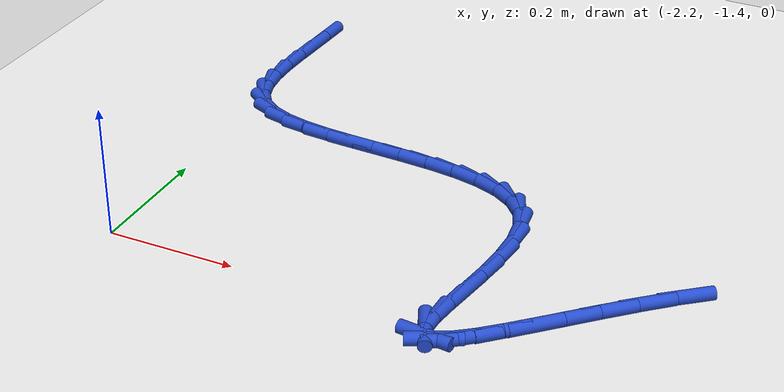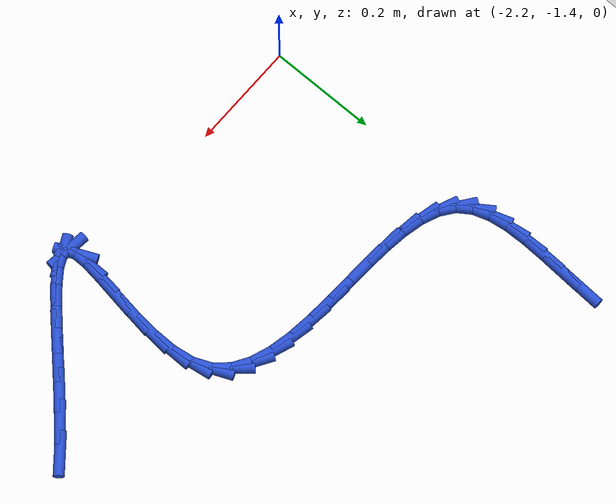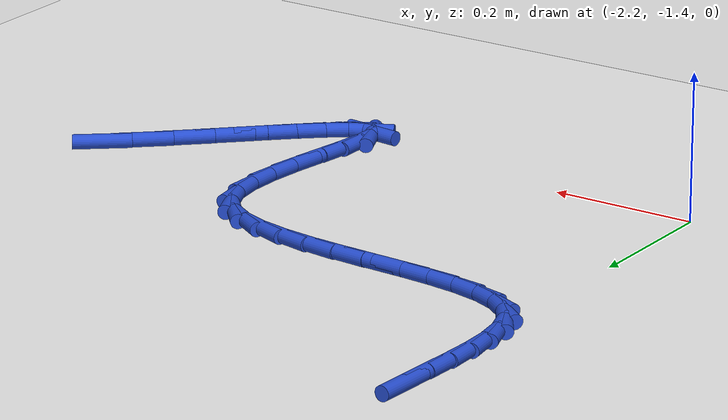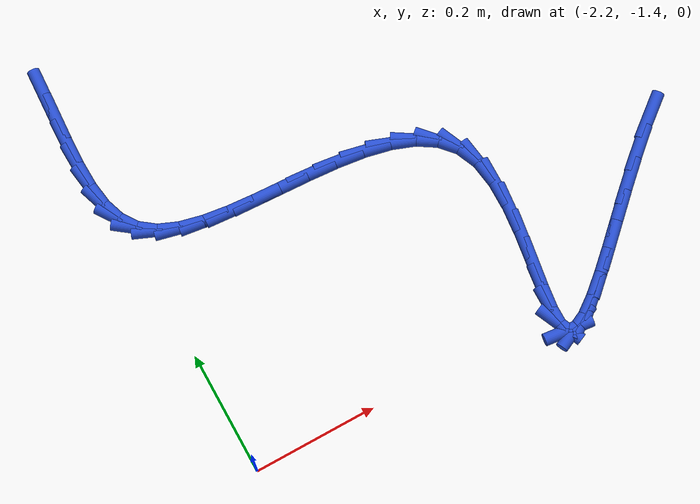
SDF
<sdf version="1.6">
 <world name="default">
  <model name="ground_plane">
   <static>1</static>
   <link name="link">
    <collision name="collision">
     <geometry><plane><normal>0 0 1</normal><size>100 100</size></plane></geometry>
     <surface><friction><ode><mu>100</mu><mu2>50</mu2></ode></friction></surface>
    </collision>
    <visual name="visual">
     <cast_shadows>0</cast_shadows>
     <geometry><plane><normal>0 0 1</normal><size>100 100</size></plane></geometry>
     <material>
      <script><uri>file://media/materials/scripts/gazebo.material</uri><name>Gazebo/WhiteGlow</name></script>
     </material>
    </visual>
   </link>
  </model>
  <model name="line">
   <link name="link_132">
    <pose>-2.212301179281397 -0.7221808307681921 0.01 0 1.57 1.5187789625821735</pose>
    <collision name="collision">
     <geometry><cylinder><radius>0.01</radius><length>0.08</length></cylinder></geometry>
    </collision>
    <visual name="visual">
     <material>
      <script><name>Gazebo/Blue</name><uri>file://media/materials/scripts/gazebo.material</uri></script>
     </material>
     <geometry><cylinder><radius>0.01</radius><length>0.08</length></cylinder></geometry>
    </visual>
   </link>
   <link name="link_133">
    <pose>-2.21460224689499 -0.7663774535611907 0.01 0 1.57 1.512702603882463</pose>
    <collision name="collision">
     <geometry><cylinder><radius>0.01</radius><length>0.08</length></cylinder></geometry>
    </collision>
    <visual name="visual">
     <material>
      <script><name>Gazebo/Blue</name><uri>file://media/materials/scripts/gazebo.material</uri></script>
     </material>
     <geometry><cylinder><radius>0.01</radius><length>0.08</length></cylinder></geometry>
    </visual>
   </link>
   <link name="link_134">
    <pose>-2.2171329669294106 -0.8098911467381714 0.01 0 1.57 1.5383566654719765</pose>
    <collision name="collision">
     <geometry><cylinder><radius>0.01</radius><length>0.08</length></cylinder></geometry>
    </collision>
    <visual name="visual">
     <material>
      <script><name>Gazebo/Blue</name><uri>file://media/materials/scripts/gazebo.material</uri></script>
     </material>
     <geometry><cylinder><radius>0.01</radius><length>0.08</length></cylinder></geometry>
    </visual>
   </link>
   <link name="link_135">
    <pose>-2.2184904073564464 -0.8517215536883282 0.01 0 1.57 -1.539672996805455</pose>
    <collision name="collision">
     <geometry><cylinder><radius>0.01</radius><length>0.08</length></cylinder></geometry>
    </collision>
    <visual name="visual">
     <material>
      <script><name>Gazebo/Blue</name><uri>file://media/materials/scripts/gazebo.material</uri></script>
     </material>
     <geometry><cylinder><radius>0.01</radius><length>0.08</length></cylinder></geometry>
    </visual>
   </link>
   <link name="link_136">
    <pose>-2.217271636147887 -0.8908683178008522 0.01 0 1.57 -1.4252587840512112</pose>
    <collision name="collision">
     <geometry><cylinder><radius>0.01</radius><length>0.08</length></cylinder></geometry>
    </collision>
    <visual name="visual">
     <material>
      <script><name>Gazebo/Blue</name><uri>file://media/materials/scripts/gazebo.material</uri></script>
     </material>
     <geometry><cylinder><radius>0.01</radius><length>0.08</length></cylinder></geometry>
    </visual>
   </link>
   <link name="link_137">
    <pose>-2.2120737212755195 -0.9263310824649377 0.01 0 1.57 -1.2397027894723371</pose>
    <collision name="collision">
     <geometry><cylinder><radius>0.01</radius><length>0.08</length></cylinder></geometry>
    </collision>
    <visual name="visual">
     <material>
      <script><name>Gazebo/Blue</name><uri>file://media/materials/scripts/gazebo.material</uri></script>
     </material>
     <geometry><cylinder><radius>0.01</radius><length>0.08</length></cylinder></geometry>
    </visual>
   </link>
   <link name="link_138">
    <pose>-2.2014937307111344 -0.9571094910697779 0.01 0 1.57 -0.9654553848162689</pose>
    <collision name="collision">
     <geometry><cylinder><radius>0.01</radius><length>0.08</length></cylinder></geometry>
    </collision>
    <visual name="visual">
     <material>
      <script><name>Gazebo/Blue</name><uri>file://media/materials/scripts/gazebo.material</uri></script>
     </material>
     <geometry><cylinder><radius>0.01</radius><length>0.08</length></cylinder></geometry>
    </visual>
   </link>
   <link name="link_139">
    <pose>-2.1841287329540617 -0.9822031874193081 0.01 0 1.57 -0.6423179529255536</pose>
    <collision name="collision">
     <geometry><cylinder><radius>0.01</radius><length>0.08</length></cylinder></geometry>
    </collision>
    <visual name="visual">
     <material>
      <script><name>Gazebo/Blue</name><uri>file://media/materials/scripts/gazebo.material</uri></script>
     </material>
     <geometry><cylinder><radius>0.01</radius><length>0.08</length></cylinder></geometry>
    </visual>
   </link>
   <link name="link_140">
    <pose>-2.159037807489435 -1.0009750375020328 0.01 0 1.57 -0.3921417767274185</pose>
    <collision name="collision">
     <geometry><cylinder><radius>0.01</radius><length>0.08</length></cylinder></geometry>
    </collision>
    <visual name="visual">
     <material>
      <script><name>Gazebo/Blue</name><uri>file://media/materials/scripts/gazebo.material</uri></script>
     </material>
     <geometry><cylinder><radius>0.01</radius><length>0.08</length></cylinder></geometry>
    </visual>
   </link>
   <link name="link_141">
    <pose>-2.1270704438671415 -1.0141954856432935 0.01 0 1.57 -0.22964223748382767</pose>
    <collision name="collision">
     <geometry><cylinder><radius>0.01</radius><length>0.08</length></cylinder></geometry>
    </collision>
    <visual name="visual">
     <material>
      <script><name>Gazebo/Blue</name><uri>file://media/materials/scripts/gazebo.material</uri></script>
     </material>
     <geometry><cylinder><radius>0.01</radius><length>0.08</length></cylinder></geometry>
    </visual>
   </link>
   <link name="link_142">
    <pose>-2.089509772289079 -1.0229758942629854 0.01 0 1.57 -0.12947512593445493</pose>
    <collision name="collision">
     <geometry><cylinder><radius>0.01</radius><length>0.08</length></cylinder></geometry>
    </collision>
    <visual name="visual">
     <material>
      <script><name>Gazebo/Blue</name><uri>file://media/materials/scripts/gazebo.material</uri></script>
     </material>
     <geometry><cylinder><radius>0.01</radius><length>0.08</length></cylinder></geometry>
    </visual>
   </link>
   <link name="link_143">
    <pose>-2.0476389229571454 -1.0284276257810037 0.01 0 1.57 -0.07191515037254838</pose>
    <collision name="collision">
     <geometry><cylinder><radius>0.01</radius><length>0.08</length></cylinder></geometry>
    </collision>
    <visual name="visual">
     <material>
      <script><name>Gazebo/Blue</name><uri>file://media/materials/scripts/gazebo.material</uri></script>
     </material>
     <geometry><cylinder><radius>0.01</radius><length>0.08</length></cylinder></geometry>
    </visual>
   </link>
   <link name="link_144">
    <pose>-2.0027410260732377 -1.0316620426172427 0.01 0 1.57 -0.0456026197481013</pose>
    <collision name="collision">
     <geometry><cylinder><radius>0.01</radius><length>0.08</length></cylinder></geometry>
    </collision>
    <visual name="visual">
     <material>
      <script><name>Gazebo/Blue</name><uri>file://media/materials/scripts/gazebo.material</uri></script>
     </material>
     <geometry><cylinder><radius>0.01</radius><length>0.08</length></cylinder></geometry>
    </visual>
   </link>
   <link name="link_145">
    <pose>-1.9560992118392548 -1.0337905071915958 0.01 0 1.57 -0.04527173992149143</pose>
    <collision name="collision">
     <geometry><cylinder><radius>0.01</radius><length>0.08</length></cylinder></geometry>
    </collision>
    <visual name="visual">
     <material>
      <script><name>Gazebo/Blue</name><uri>file://media/materials/scripts/gazebo.material</uri></script>
     </material>
     <geometry><cylinder><radius>0.01</radius><length>0.08</length></cylinder></geometry>
    </visual>
   </link>
   <link name="link_146">
    <pose>-1.9089966104570948 -1.035924381923959 0.01 0 1.57 -0.0701231495153381</pose>
    <collision name="collision">
     <geometry><cylinder><radius>0.01</radius><length>0.08</length></cylinder></geometry>
    </collision>
    <visual name="visual">
     <material>
      <script><name>Gazebo/Blue</name><uri>file://media/materials/scripts/gazebo.material</uri></script>
     </material>
     <geometry><cylinder><radius>0.01</radius><length>0.08</length></cylinder></geometry>
    </visual>
   </link>
   <link name="link_147">
    <pose>-1.8627163521286538 -1.0391750292342257 0.01 0 1.57 -0.12339498194610898</pose>
    <collision name="collision">
     <geometry><cylinder><radius>0.01</radius><length>0.08</length></cylinder></geometry>
    </collision>
    <visual name="visual">
     <material>
      <script><name>Gazebo/Blue</name><uri>file://media/materials/scripts/gazebo.material</uri></script>
     </material>
     <geometry><cylinder><radius>0.01</radius><length>0.08</length></cylinder></geometry>
    </visual>
   </link>
   <link name="link_148">
    <pose>-1.8185415670558298 -1.044653811542291 0.01 0 1.57 -0.21293005458101488</pose>
    <collision name="collision">
     <geometry><cylinder><radius>0.01</radius><length>0.08</length></cylinder></geometry>
    </collision>
    <visual name="visual">
     <material>
      <script><name>Gazebo/Blue</name><uri>file://media/materials/scripts/gazebo.material</uri></script>
     </material>
     <geometry><cylinder><radius>0.01</radius><length>0.08</length></cylinder></geometry>
    </visual>
   </link>
   <link name="link_149">
    <pose>-1.7777553854405224 -1.0534720912680489 0.01 0 1.57 -0.35210793314636835</pose>
    <collision name="collision">
     <geometry><cylinder><radius>0.01</radius><length>0.08</length></cylinder></geometry>
    </collision>
    <visual name="visual">
     <material>
      <script><name>Gazebo/Blue</name><uri>file://media/materials/scripts/gazebo.material</uri></script>
     </material>
     <geometry><cylinder><radius>0.01</radius><length>0.08</length></cylinder></geometry>
    </visual>
   </link>
   <link name="link_150">
    <pose>-1.7416409374846276 -1.0667412308313944 0.01 0 1.57 -0.5581609992396865</pose>
    <collision name="collision">
     <geometry><cylinder><radius>0.01</radius><length>0.08</length></cylinder></geometry>
    </collision>
    <visual name="visual">
     <material>
      <script><name>Gazebo/Blue</name><uri>file://media/materials/scripts/gazebo.material</uri></script>
     </material>
     <geometry><cylinder><radius>0.01</radius><length>0.08</length></cylinder></geometry>
    </visual>
   </link>
   <link name="link_151">
    <pose>-1.7114813533900446 -1.085572592652222 0.01 0 1.57 -0.8386935313883869</pose>
    <collision name="collision">
     <geometry><cylinder><radius>0.01</radius><length>0.08</length></cylinder></geometry>
    </collision>
    <visual name="visual">
     <material>
      <script><name>Gazebo/Blue</name><uri>file://media/materials/scripts/gazebo.material</uri></script>
     </material>
     <geometry><cylinder><radius>0.01</radius><length>0.08</length></cylinder></geometry>
    </visual>
   </link>
   <link name="link_152">
    <pose>-1.6885597633586689 -1.111077539150425 0.01 0 1.57 -1.1612660900437317</pose>
    <collision name="collision">
     <geometry><cylinder><radius>0.01</radius><length>0.08</length></cylinder></geometry>
    </collision>
    <visual name="visual">
     <material>
      <script><name>Gazebo/Blue</name><uri>file://media/materials/scripts/gazebo.material</uri></script>
     </material>
     <geometry><cylinder><radius>0.01</radius><length>0.08</length></cylinder></geometry>
    </visual>
   </link>
   <link name="link_153">
    <pose>-1.6741260527079531 -1.1443293580872422 0.01 0 1.57 -1.421608834834189</pose>
    <collision name="collision">
     <geometry><cylinder><radius>0.01</radius><length>0.08</length></cylinder></geometry>
    </collision>
    <visual name="visual">
     <material>
      <script><name>Gazebo/Blue</name><uri>file://media/materials/scripts/gazebo.material</uri></script>
     </material>
     <geometry><cylinder><radius>0.01</radius><length>0.08</length></cylinder></geometry>
    </visual>
   </link>
   <link name="link_154">
    <pose>-1.6680414918570292 -1.184810986132583 0.01 0 1.57 1.5649317950904935</pose>
    <collision name="collision">
     <geometry><cylinder><radius>0.01</radius><length>0.08</length></cylinder></geometry>
    </collision>
    <visual name="visual">
     <material>
      <script><name>Gazebo/Blue</name><uri>file://media/materials/scripts/gazebo.material</uri></script>
     </material>
     <geometry><cylinder><radius>0.01</radius><length>0.08</length></cylinder></geometry>
    </visual>
   </link>
   <link name="link_155">
    <pose>-1.6683057643968706 -1.229873324179311 0.01 0 1.57 1.4754003028472027</pose>
    <collision name="collision">
     <geometry><cylinder><radius>0.01</radius><length>0.08</length></cylinder></geometry>
    </collision>
    <visual name="visual">
     <material>
      <script><name>Gazebo/Blue</name><uri>file://media/materials/scripts/gazebo.material</uri></script>
     </material>
     <geometry><cylinder><radius>0.01</radius><length>0.08</length></cylinder></geometry>
    </visual>
   </link>
   <link name="link_156">
    <pose>-1.6727881594811191 -1.2767179351461946 0.01 0 1.57 1.4284099140365538</pose>
    <collision name="collision">
     <geometry><cylinder><radius>0.01</radius><length>0.08</length></cylinder></geometry>
    </collision>
    <visual name="visual">
     <material>
      <script><name>Gazebo/Blue</name><uri>file://media/materials/scripts/gazebo.material</uri></script>
     </material>
     <geometry><cylinder><radius>0.01</radius><length>0.08</length></cylinder></geometry>
    </visual>
   </link>
   <link name="link_157">
    <pose>-1.6793579662634164 -1.3225463819520027 0.01 0 1.57 1.416686234241029</pose>
    <collision name="collision">
     <geometry><cylinder><radius>0.01</radius><length>0.08</length></cylinder></geometry>
    </collision>
    <visual name="visual">
     <material>
      <script><name>Gazebo/Blue</name><uri>file://media/materials/scripts/gazebo.material</uri></script>
     </material>
     <geometry><cylinder><radius>0.01</radius><length>0.08</length></cylinder></geometry>
    </visual>
   </link>
   <link name="link_158">
    <pose>-1.6858844738974044 -1.3645602275155004 0.01 0 1.57 1.4484611800890306</pose>
    <collision name="collision">
     <geometry><cylinder><radius>0.01</radius><length>0.08</length></cylinder></geometry>
    </collision>
    <visual name="visual">
     <material>
      <script><name>Gazebo/Blue</name><uri>file://media/materials/scripts/gazebo.material</uri></script>
     </material>
     <geometry><cylinder><radius>0.01</radius><length>0.08</length></cylinder></geometry>
    </visual>
   </link>
   <link name="link_159">
    <pose>-1.6902369715367243 -1.3999610347554576 0.01 0 1.57 1.5689580054106083</pose>
    <collision name="collision">
     <geometry><cylinder><radius>0.01</radius><length>0.08</length></cylinder></geometry>
    </collision>
    <visual name="visual">
     <material>
      <script><name>Gazebo/Blue</name><uri>file://media/materials/scripts/gazebo.material</uri></script>
     </material>
     <geometry><cylinder><radius>0.01</radius><length>0.08</length></cylinder></geometry>
    </visual>
   </link>
   <link name="link_160">
    <pose>-1.6902847483350196 -1.4259503665906426 0.01 0 1.57 -1.144460521357538</pose>
    <collision name="collision">
     <geometry><cylinder><radius>0.01</radius><length>0.08</length></cylinder></geometry>
    </collision>
    <visual name="visual">
     <material>
      <script><name>Gazebo/Blue</name><uri>file://media/materials/scripts/gazebo.material</uri></script>
     </material>
     <geometry><cylinder><radius>0.01</radius><length>0.08</length></cylinder></geometry>
    </visual>
   </link>
   <link name="link_161">
    <pose>-1.6839726597884035 -1.4398477206636473 0.01 0 1.57 -0.10539106930095181</pose>
    <collision name="collision">
     <geometry><cylinder><radius>0.01</radius><length>0.08</length></cylinder></geometry>
    </collision>
    <visual name="visual">
     <material>
      <script><name>Gazebo/Blue</name><uri>file://media/materials/scripts/gazebo.material</uri></script>
     </material>
     <geometry><cylinder><radius>0.01</radius><length>0.08</length></cylinder></geometry>
    </visual>
   </link>
   <link name="link_162">
    <pose>-1.6707055433301485 -1.441251156221504 0.01 0 1.57 0.4505654689166845</pose>
    <collision name="collision">
     <geometry><cylinder><radius>0.01</radius><length>0.08</length></cylinder></geometry>
    </collision>
    <visual name="visual">
     <material>
      <script><name>Gazebo/Blue</name><uri>file://media/materials/scripts/gazebo.material</uri></script>
     </material>
     <geometry><cylinder><radius>0.01</radius><length>0.08</length></cylinder></geometry>
    </visual>
   </link>
   <link name="link_163">
    <pose>-1.6512086584116967 -1.431819486028591 0.01 0 1.57 0.6388261442664692</pose>
    <collision name="collision">
     <geometry><cylinder><radius>0.01</radius><length>0.08</length></cylinder></geometry>
    </collision>
    <visual name="visual">
     <material>
      <script><name>Gazebo/Blue</name><uri>file://media/materials/scripts/gazebo.material</uri></script>
     </material>
     <geometry><cylinder><radius>0.01</radius><length>0.08</length></cylinder></geometry>
    </visual>
   </link>
   <link name="link_164">
    <pose>-1.6262548304859499 -1.413285758058538 0.01 0 1.57 0.7182475356959281</pose>
    <collision name="collision">
     <geometry><cylinder><radius>0.01</radius><length>0.08</length></cylinder></geometry>
    </collision>
    <visual name="visual">
     <material>
      <script><name>Gazebo/Blue</name><uri>file://media/materials/scripts/gazebo.material</uri></script>
     </material>
     <geometry><cylinder><radius>0.01</radius><length>0.08</length></cylinder></geometry>
    </visual>
   </link>
   <link name="link_165">
    <pose>-1.596616885005813 -1.387383020284976 0.01 0 1.57 0.7545184187136068</pose>
    <collision name="collision">
     <geometry><cylinder><radius>0.01</radius><length>0.08</length></cylinder></geometry>
    </collision>
    <visual name="visual">
     <material>
      <script><name>Gazebo/Blue</name><uri>file://media/materials/scripts/gazebo.material</uri></script>
     </material>
     <geometry><cylinder><radius>0.01</radius><length>0.08</length></cylinder></geometry>
    </visual>
   </link>
   <link name="link_166">
    <pose>-1.5630676474241885 -1.3558443206815343 0.01 0 1.57 0.7681240941815564</pose>
    <collision name="collision">
     <geometry><cylinder><radius>0.01</radius><length>0.08</length></cylinder></geometry>
    </collision>
    <visual name="visual">
     <material>
      <script><name>Gazebo/Blue</name><uri>file://media/materials/scripts/gazebo.material</uri></script>
     </material>
     <geometry><cylinder><radius>0.01</radius><length>0.08</length></cylinder></geometry>
    </visual>
   </link>
   <link name="link_167">
    <pose>-1.5263799431939804 -1.320402707221844 0.01 0 1.57 0.7665929796747786</pose>
    <collision name="collision">
     <geometry><cylinder><radius>0.01</radius><length>0.08</length></cylinder></geometry>
    </collision>
    <visual name="visual">
     <material>
      <script><name>Gazebo/Blue</name><uri>file://media/materials/scripts/gazebo.material</uri></script>
     </material>
     <geometry><cylinder><radius>0.01</radius><length>0.08</length></cylinder></geometry>
    </visual>
   </link>
   <link name="link_168">
    <pose>-1.487326597768093 -1.2827912278795355 0.01 0 1.57 0.7523981164595589</pose>
    <collision name="collision">
     <geometry><cylinder><radius>0.01</radius><length>0.08</length></cylinder></geometry>
    </collision>
    <visual name="visual">
     <material>
      <script><name>Gazebo/Blue</name><uri>file://media/materials/scripts/gazebo.material</uri></script>
     </material>
     <geometry><cylinder><radius>0.01</radius><length>0.08</length></cylinder></geometry>
    </visual>
   </link>
   <link name="link_169">
    <pose>-1.4466804365994286 -1.2447429306282374 0.01 0 1.57 0.7252026086808739</pose>
    <collision name="collision">
     <geometry><cylinder><radius>0.01</radius><length>0.08</length></cylinder></geometry>
    </collision>
    <visual name="visual">
     <material>
      <script><name>Gazebo/Blue</name><uri>file://media/materials/scripts/gazebo.material</uri></script>
     </material>
     <geometry><cylinder><radius>0.01</radius><length>0.08</length></cylinder></geometry>
    </visual>
   </link>
   <link name="link_170">
    <pose>-1.4052142851408906 -1.207990863441581 0.01 0 1.57 0.6822181651140617</pose>
    <collision name="collision">
     <geometry><cylinder><radius>0.01</radius><length>0.08</length></cylinder></geometry>
    </collision>
    <visual name="visual">
     <material>
      <script><name>Gazebo/Blue</name><uri>file://media/materials/scripts/gazebo.material</uri></script>
     </material>
     <geometry><cylinder><radius>0.01</radius><length>0.08</length></cylinder></geometry>
    </visual>
   </link>
  </model>
 </world>
</sdf>
